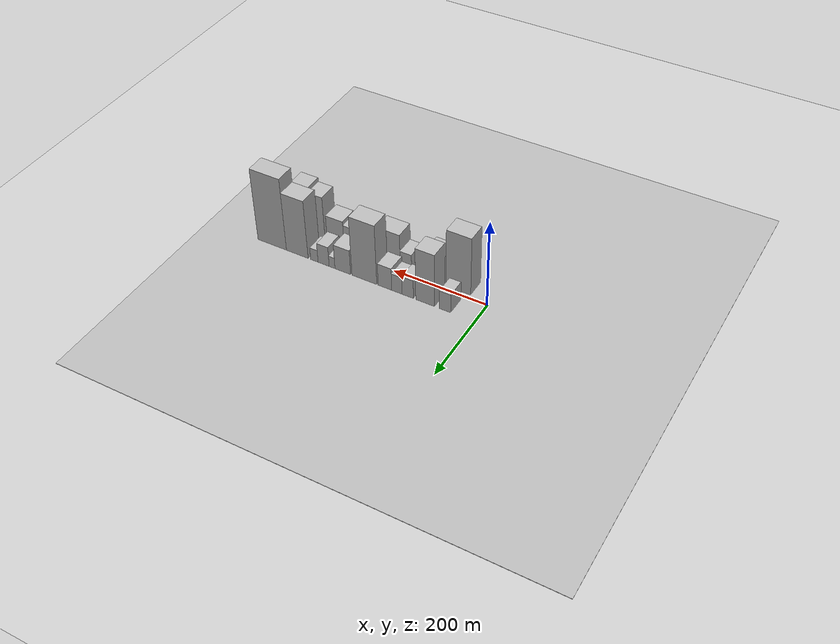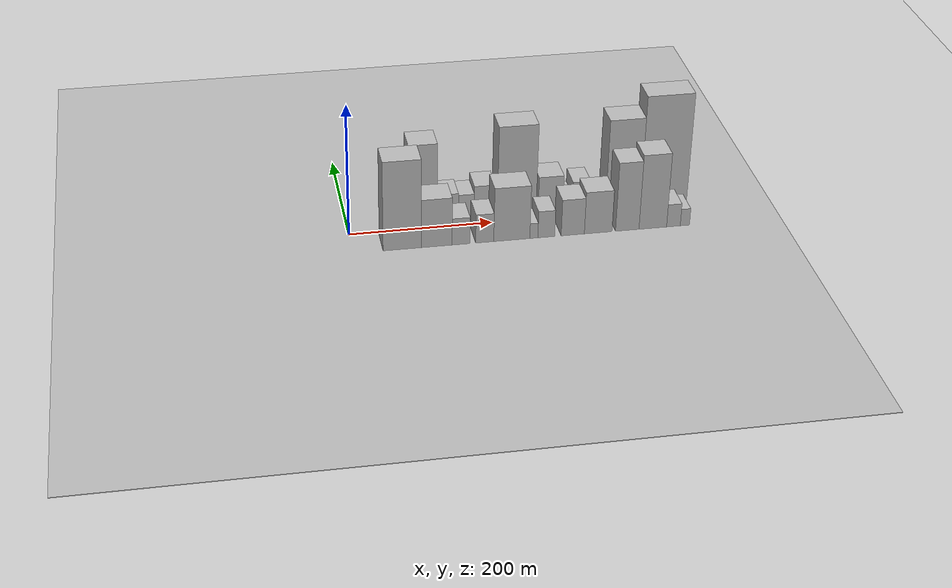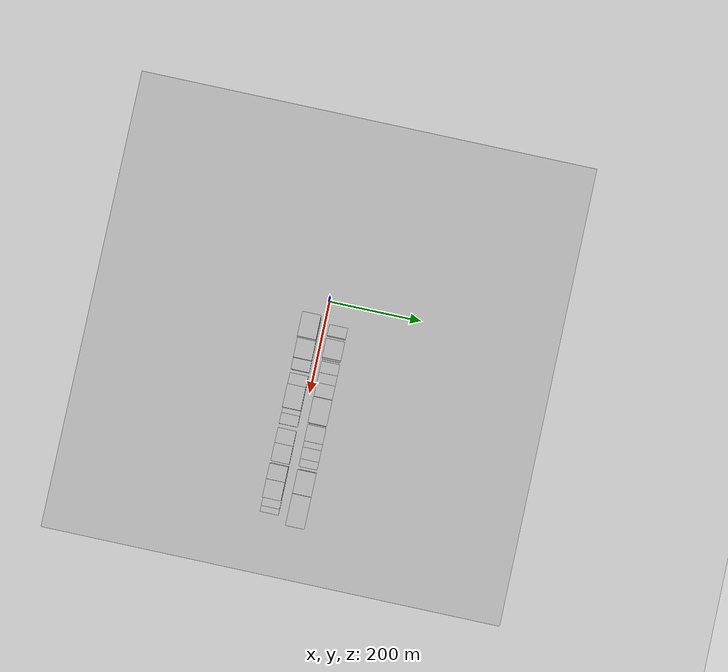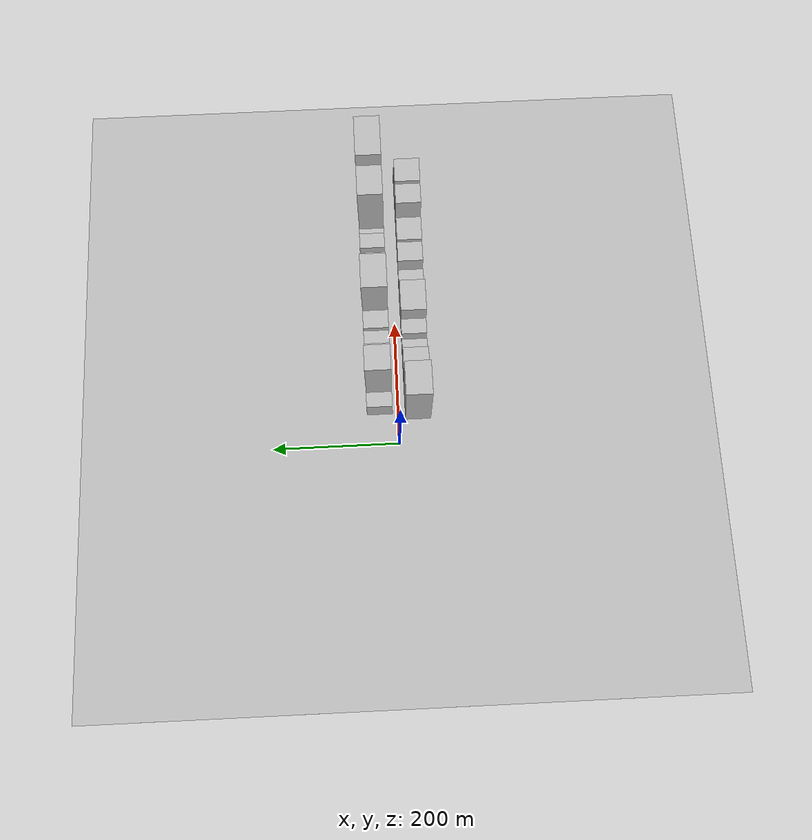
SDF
<?xml version="1.0" encoding="utf-8"?>

<sdf version="1.6">

   <world name="default">

      <gui fullscreen="0">

         <camera name="user_camera">

            <pose>-15 0 4.57585 0 0 0</pose>

            <view_controller>orbit</view_controller>

         </camera>

      </gui>

      <scene>

         <sky>

           <clouds>

             <speed>12</speed>

           </clouds>

         </sky>

         <ambient>0.4 0.4 0.4 1</ambient>

         <background>0.7 0.7 0.7 1</background>

         <shadows>1</shadows>

      </scene>

      <gravity>0 0 -9.8066</gravity>

      <magnetic_field>6e-06 2.3e-05 -4.2e-05</magnetic_field>

      <physics default="0" name="default_physics" type="ode">

         <ode>

            <solver>

               <type>quick</type>

               <iters>10</iters>

               <sor>1.0</sor>

               <use_dynamic_moi_rescaling>0</use_dynamic_moi_rescaling>

            </solver>

            <constraints>

               <cfm>0</cfm>

               <erp>0.2</erp>

               <contact_max_correcting_vel>100</contact_max_correcting_vel>

               <contact_surface_layer>0.001</contact_surface_layer>

            </constraints>

         </ode>

         <max_step_size>0.004</max_step_size>

         <real_time_factor>1</real_time_factor>

         <real_time_update_rate>250</real_time_update_rate>

      </physics>

      <light name="sun" type="directional">

         <cast_shadows>1</cast_shadows>

         <pose>0 0 10 0 0 0</pose>

         <diffuse>0.8 0.8 0.8 1</diffuse>

         <specular>0.2 0.2 0.2 1</specular>

         <attenuation>

            <range>1000</range>

            <constant>0.9</constant>

            <linear>0.01</linear>

            <quadratic>0.001</quadratic>

         </attenuation>

         <direction>-0.5 0.1 -0.9</direction>

      </light>

      <include>

         <name>ground_plane_1</name>

         <uri>model://HANNAS_ground_plane</uri>

         <pose>0 0 0  0 0 0</pose>

      </include>

      <include>

         <name>ground_plane_2</name>

         <uri>model://HANNAS_ground_plane</uri>

         <pose>100 0 0  0 0 0</pose>

      </include>

      <model name="building_1">

         <static>1</static>

         <pose frame="">61.9903 30.0000 0 0.000000 0.000000 1.570796</pose>

         <link name="link">

            <pose frame="">0 0 22.50 0 0 0</pose>

            <collision name="collision">

               <geometry>

                  <box>

                     <size>40.0000 23.9806 45.0000</size>

                  </box>

               </geometry>

               <max_contacts>10</max_contacts>

               <surface>

                  <contact>

                     <ode/>

                  </contact>

                  <bounce/>

                  <friction>

                     <torsional>

                        <ode/>

                     </torsional>

                     <ode/>

                  </friction>

               </surface>

            </collision>

            <visual name="visual">

               <cast_shadows>0</cast_shadows>

               <geometry>

                  <box>

                     <size>40.0000 23.9806 45.0000</size>

                  </box>

               </geometry>

               <material>

                  <script>

                     <uri>model://HANNAS_wall/materials/scripts</uri>

                     <uri>model://HANNAS_wall/materials/textures</uri>

                     <name>vrc/HANNAS_wall</name>

                  </script>

               </material>

            </visual>

            <self_collide>0</self_collide>

            <enable_wind>0</enable_wind>

            <kinematic>0</kinematic>

         </link>

      </model>

      <model name="building_2">

         <static>1</static>

         <pose frame="">104.1201 30.0000 0 0.000000 0.000000 1.570796</pose>

         <link name="link">

            <pose frame="">0 0 63.00 0 0 0</pose>

            <collision name="collision">

               <geometry>

                  <box>

                     <size>40.0000 40.2789 126.0000</size>

                  </box>

               </geometry>

               <max_contacts>10</max_contacts>

               <surface>

                  <contact>

                     <ode/>

                  </contact>

                  <bounce/>

                  <friction>

                     <torsional>

                        <ode/>

                     </torsional>

                     <ode/>

                  </friction>

               </surface>

            </collision>

            <visual name="visual">

               <cast_shadows>0</cast_shadows>

               <geometry>

                  <box>

                     <size>40.0000 40.2789 126.0000</size>

                  </box>

               </geometry>

               <material>

                  <script>

                     <uri>model://HANNAS_wall/materials/scripts</uri>

                     <uri>model://HANNAS_wall/materials/textures</uri>

                     <name>vrc/HANNAS_wall</name>

                  </script>

               </material>

            </visual>

            <self_collide>0</self_collide>

            <enable_wind>0</enable_wind>

            <kinematic>0</kinematic>

         </link>

      </model>

      <model name="building_3">

         <static>1</static>

         <pose frame="">141.6000 30.0000 0 0.000000 0.000000 1.570796</pose>

         <link name="link">

            <pose frame="">0 0 22.50 0 0 0</pose>

            <collision name="collision">

               <geometry>

                  <box>

                     <size>40.0000 24.6809 45.0000</size>

                  </box>

               </geometry>

               <max_contacts>10</max_contacts>

               <surface>

                  <contact>

                     <ode/>

                  </contact>

                  <bounce/>

                  <friction>

                     <torsional>

                        <ode/>

                     </torsional>

                     <ode/>

                  </friction>

               </surface>

            </collision>

            <visual name="visual">

               <cast_shadows>0</cast_shadows>

               <geometry>

                  <box>

                     <size>40.0000 24.6809 45.0000</size>

                  </box>

               </geometry>

               <material>

                  <script>

                     <uri>model://HANNAS_wall/materials/scripts</uri>

                     <uri>model://HANNAS_wall/materials/textures</uri>

                     <name>vrc/HANNAS_wall</name>

                  </script>

               </material>

            </visual>

            <self_collide>0</self_collide>

            <enable_wind>0</enable_wind>

            <kinematic>0</kinematic>

         </link>

      </model>

      <model name="building_4">

         <static>1</static>

         <pose frame="">165.0783 30.0000 0 0.000000 0.000000 1.570796</pose>

         <link name="link">

            <pose frame="">0 0 21.00 0 0 0</pose>

            <collision name="collision">

               <geometry>

                  <box>

                     <size>40.0000 22.2758 42.0000</size>

                  </box>

               </geometry>

               <max_contacts>10</max_contacts>

               <surface>

                  <contact>

                     <ode/>

                  </contact>

                  <bounce/>

                  <friction>

                     <torsional>

                        <ode/>

                     </torsional>

                     <ode/>

                  </friction>

               </surface>

            </collision>

            <visual name="visual">

               <cast_shadows>0</cast_shadows>

               <geometry>

                  <box>

                     <size>40.0000 22.2758 42.0000</size>

                  </box>

               </geometry>

               <material>

                  <script>

                     <uri>model://HANNAS_wall/materials/scripts</uri>

                     <uri>model://HANNAS_wall/materials/textures</uri>

                     <name>vrc/HANNAS_wall</name>

                  </script>

               </material>

            </visual>

            <self_collide>0</self_collide>

            <enable_wind>0</enable_wind>

            <kinematic>0</kinematic>

         </link>

      </model>

      <model name="building_5">

         <static>1</static>

         <pose frame="">191.0973 30.0000 0 0.000000 0.000000 1.570796</pose>

         <link name="link">

            <pose frame="">0 0 27.00 0 0 0</pose>

            <collision name="collision">

               <geometry>

                  <box>

                     <size>40.0000 29.7621 54.0000</size>

                  </box>

               </geometry>

               <max_contacts>10</max_contacts>

               <surface>

                  <contact>

                     <ode/>

                  </contact>

                  <bounce/>

                  <friction>

                     <torsional>

                        <ode/>

                     </torsional>

                     <ode/>

                  </friction>

               </surface>

            </collision>

            <visual name="visual">

               <cast_shadows>0</cast_shadows>

               <geometry>

                  <box>

                     <size>40.0000 29.7621 54.0000</size>

                  </box>

               </geometry>

               <material>

                  <script>

                     <uri>model://HANNAS_wall/materials/scripts</uri>

                     <uri>model://HANNAS_wall/materials/textures</uri>

                     <name>vrc/HANNAS_wall</name>

                  </script>

               </material>

            </visual>

            <self_collide>0</self_collide>

            <enable_wind>0</enable_wind>

            <kinematic>0</kinematic>

         </link>

      </model>

      <model name="building_6">

         <static>1</static>

         <pose frame="">236.5478 30.0000 0 0.000000 0.000000 1.570796</pose>

         <link name="link">

            <pose frame="">0 0 72.00 0 0 0</pose>

            <collision name="collision">

               <geometry>

                  <box>

                     <size>40.0000 55.1391 144.0000</size>

                  </box>

               </geometry>

               <max_contacts>10</max_contacts>

               <surface>

                  <contact>

                     <ode/>

                  </contact>

                  <bounce/>

                  <friction>

                     <torsional>

                        <ode/>

                     </torsional>

                     <ode/>

                  </friction>

               </surface>

            </collision>

            <visual name="visual">

               <cast_shadows>0</cast_shadows>

               <geometry>

                  <box>

                     <size>40.0000 55.1391 144.0000</size>

                  </box>

               </geometry>

               <material>

                  <script>

                     <uri>model://HANNAS_wall/materials/scripts</uri>

                     <uri>model://HANNAS_wall/materials/textures</uri>

                     <name>vrc/HANNAS_wall</name>

                  </script>

               </material>

            </visual>

            <self_collide>0</self_collide>

            <enable_wind>0</enable_wind>

            <kinematic>0</kinematic>

         </link>

      </model>

      <model name="building_7">

         <static>1</static>

         <pose frame="">284.7847 30.0000 0 0.000000 0.000000 1.570796</pose>

         <link name="link">

            <pose frame="">0 0 30.00 0 0 0</pose>

            <collision name="collision">

               <geometry>

                  <box>

                     <size>40.0000 35.3346 60.0000</size>

                  </box>

               </geometry>

               <max_contacts>10</max_contacts>

               <surface>

                  <contact>

                     <ode/>

                  </contact>

                  <bounce/>

                  <friction>

                     <torsional>

                        <ode/>

                     </torsional>

                     <ode/>

                  </friction>

               </surface>

            </collision>

            <visual name="visual">

               <cast_shadows>0</cast_shadows>

               <geometry>

                  <box>

                     <size>40.0000 35.3346 60.0000</size>

                  </box>

               </geometry>

               <material>

                  <script>

                     <uri>model://HANNAS_wall/materials/scripts</uri>

                     <uri>model://HANNAS_wall/materials/textures</uri>

                     <name>vrc/HANNAS_wall</name>

                  </script>

               </material>

            </visual>

            <self_collide>0</self_collide>

            <enable_wind>0</enable_wind>

            <kinematic>0</kinematic>

         </link>

      </model>

      <model name="building_8">

         <static>1</static>

         <pose frame="">309.0534 30.0000 0 0.000000 0.000000 1.570796</pose>

         <link name="link">

            <pose frame="">0 0 13.50 0 0 0</pose>

            <collision name="collision">

               <geometry>

                  <box>

                     <size>40.0000 13.2028 27.0000</size>

                  </box>

               </geometry>

               <max_contacts>10</max_contacts>

               <surface>

                  <contact>

                     <ode/>

                  </contact>

                  <bounce/>

                  <friction>

                     <torsional>

                        <ode/>

                     </torsional>

                     <ode/>

                  </friction>

               </surface>

            </collision>

            <visual name="visual">

               <cast_shadows>0</cast_shadows>

               <geometry>

                  <box>

                     <size>40.0000 13.2028 27.0000</size>

                  </box>

               </geometry>

               <material>

                  <script>

                     <uri>model://HANNAS_wall/materials/scripts</uri>

                     <uri>model://HANNAS_wall/materials/textures</uri>

                     <name>vrc/HANNAS_wall</name>

                  </script>

               </material>

            </visual>

            <self_collide>0</self_collide>

            <enable_wind>0</enable_wind>

            <kinematic>0</kinematic>

         </link>

      </model>

      <model name="building_9">

         <static>1</static>

         <pose frame="">328.2975 30.0000 0 0.000000 0.000000 1.570796</pose>

         <link name="link">

            <pose frame="">0 0 24.00 0 0 0</pose>

            <collision name="collision">

               <geometry>

                  <box>

                     <size>40.0000 25.2855 48.0000</size>

                  </box>

               </geometry>

               <max_contacts>10</max_contacts>

               <surface>

                  <contact>

                     <ode/>

                  </contact>

                  <bounce/>

                  <friction>

                     <torsional>

                        <ode/>

                     </torsional>

                     <ode/>

                  </friction>

               </surface>

            </collision>

            <visual name="visual">

               <cast_shadows>0</cast_shadows>

               <geometry>

                  <box>

                     <size>40.0000 25.2855 48.0000</size>

                  </box>

               </geometry>

               <material>

                  <script>

                     <uri>model://HANNAS_wall/materials/scripts</uri>

                     <uri>model://HANNAS_wall/materials/textures</uri>

                     <name>vrc/HANNAS_wall</name>

                  </script>

               </material>

            </visual>

            <self_collide>0</self_collide>

            <enable_wind>0</enable_wind>

            <kinematic>0</kinematic>

         </link>

      </model>

      <model name="building_10">

         <static>1</static>

         <pose frame="">349.3878 30.0000 0 0.000000 0.000000 1.570796</pose>

         <link name="link">

            <pose frame="">0 0 15.00 0 0 0</pose>

            <collision name="collision">

               <geometry>

                  <box>

                     <size>40.0000 16.8951 30.0000</size>

                  </box>

               </geometry>

               <max_contacts>10</max_contacts>

               <surface>

                  <contact>

                     <ode/>

                  </contact>

                  <bounce/>

                  <friction>

                     <torsional>

                        <ode/>

                     </torsional>

                     <ode/>

                  </friction>

               </surface>

            </collision>

            <visual name="visual">

               <cast_shadows>0</cast_shadows>

               <geometry>

                  <box>

                     <size>40.0000 16.8951 30.0000</size>

                  </box>

               </geometry>

               <material>

                  <script>

                     <uri>model://HANNAS_wall/materials/scripts</uri>

                     <uri>model://HANNAS_wall/materials/textures</uri>

                     <name>vrc/HANNAS_wall</name>

                  </script>

               </material>

            </visual>

            <self_collide>0</self_collide>

            <enable_wind>0</enable_wind>

            <kinematic>0</kinematic>

         </link>

      </model>

      <model name="building_11">

         <static>1</static>

         <pose frame="">389.0252 30.0000 0 0.000000 0.000000 1.570796</pose>

         <link name="link">

            <pose frame="">0 0 70.50 0 0 0</pose>

            <collision name="collision">

               <geometry>

                  <box>

                     <size>40.0000 50.3797 141.0000</size>

                  </box>

               </geometry>

               <max_contacts>10</max_contacts>

               <surface>

                  <contact>

                     <ode/>

                  </contact>

                  <bounce/>

                  <friction>

                     <torsional>

                        <ode/>

                     </torsional>

                     <ode/>

                  </friction>

               </surface>

            </collision>

            <visual name="visual">

               <cast_shadows>0</cast_shadows>

               <geometry>

                  <box>

                     <size>40.0000 50.3797 141.0000</size>

                  </box>

               </geometry>

               <material>

                  <script>

                     <uri>model://HANNAS_wall/materials/scripts</uri>

                     <uri>model://HANNAS_wall/materials/textures</uri>

                     <name>vrc/HANNAS_wall</name>

                  </script>

               </material>

            </visual>

            <self_collide>0</self_collide>

            <enable_wind>0</enable_wind>

            <kinematic>0</kinematic>

         </link>

      </model>

      <model name="building_12">

         <static>1</static>

         <pose frame="">447.8136 30.0000 0 0.000000 0.000000 1.570796</pose>

         <link name="link">

            <pose frame="">0 0 87.00 0 0 0</pose>

            <collision name="collision">

               <geometry>

                  <box>

                     <size>40.0000 67.1970 174.0000</size>

                  </box>

               </geometry>

               <max_contacts>10</max_contacts>

               <surface>

                  <contact>

                     <ode/>

                  </contact>

                  <bounce/>

                  <friction>

                     <torsional>

                        <ode/>

                     </torsional>

                     <ode/>

                  </friction>

               </surface>

            </collision>

            <visual name="visual">

               <cast_shadows>0</cast_shadows>

               <geometry>

                  <box>

                     <size>40.0000 67.1970 174.0000</size>

                  </box>

               </geometry>

               <material>

                  <script>

                     <uri>model://HANNAS_wall/materials/scripts</uri>

                     <uri>model://HANNAS_wall/materials/textures</uri>

                     <name>vrc/HANNAS_wall</name>

                  </script>

               </material>

            </visual>

            <self_collide>0</self_collide>

            <enable_wind>0</enable_wind>

            <kinematic>0</kinematic>

         </link>

      </model>

      <model name="building_13">

         <static>1</static>

         <pose frame="">66.2596 -30.0000 0 0.000000 0.000000 1.570796</pose>

         <link name="link">

            <pose frame="">0 0 69.00 0 0 0</pose>

            <collision name="collision">

               <geometry>

                  <box>

                     <size>40.0000 52.5192 138.0000</size>

                  </box>

               </geometry>

               <max_contacts>10</max_contacts>

               <surface>

                  <contact>

                     <ode/>

                  </contact>

                  <bounce/>

                  <friction>

                     <torsional>

                        <ode/>

                     </torsional>

                     <ode/>

                  </friction>

               </surface>

            </collision>

            <visual name="visual">

               <cast_shadows>0</cast_shadows>

               <geometry>

                  <box>

                     <size>40.0000 52.5192 138.0000</size>

                  </box>

               </geometry>

               <material>

                  <script>

                     <uri>model://HANNAS_wall/materials/scripts</uri>

                     <uri>model://HANNAS_wall/materials/textures</uri>

                     <name>vrc/HANNAS_wall</name>

                  </script>

               </material>

            </visual>

            <self_collide>0</self_collide>

            <enable_wind>0</enable_wind>

            <kinematic>0</kinematic>

         </link>

      </model>

      <model name="building_14">

         <static>1</static>

         <pose frame="">113.6524 -30.0000 0 0.000000 0.000000 1.570796</pose>

         <link name="link">

            <pose frame="">0 0 37.50 0 0 0</pose>

            <collision name="collision">

               <geometry>

                  <box>

                     <size>40.0000 42.2664 75.0000</size>

                  </box>

               </geometry>

               <max_contacts>10</max_contacts>

               <surface>

                  <contact>

                     <ode/>

                  </contact>

                  <bounce/>

                  <friction>

                     <torsional>

                        <ode/>

                     </torsional>

                     <ode/>

                  </friction>

               </surface>

            </collision>

            <visual name="visual">

               <cast_shadows>0</cast_shadows>

               <geometry>

                  <box>

                     <size>40.0000 42.2664 75.0000</size>

                  </box>

               </geometry>

               <material>

                  <script>

                     <uri>model://HANNAS_wall/materials/scripts</uri>

                     <uri>model://HANNAS_wall/materials/textures</uri>

                     <name>vrc/HANNAS_wall</name>

                  </script>

               </material>

            </visual>

            <self_collide>0</self_collide>

            <enable_wind>0</enable_wind>

            <kinematic>0</kinematic>

         </link>

      </model>

      <model name="building_15">

         <static>1</static>

         <pose frame="">147.1516 -30.0000 0 0.000000 0.000000 1.570796</pose>

         <link name="link">

            <pose frame="">0 0 21.00 0 0 0</pose>

            <collision name="collision">

               <geometry>

                  <box>

                     <size>40.0000 24.7319 42.0000</size>

                  </box>

               </geometry>

               <max_contacts>10</max_contacts>

               <surface>

                  <contact>

                     <ode/>

                  </contact>

                  <bounce/>

                  <friction>

                     <torsional>

                        <ode/>

                     </torsional>

                     <ode/>

                  </friction>

               </surface>

            </collision>

            <visual name="visual">

               <cast_shadows>0</cast_shadows>

               <geometry>

                  <box>

                     <size>40.0000 24.7319 42.0000</size>

                  </box>

               </geometry>

               <material>

                  <script>

                     <uri>model://HANNAS_wall/materials/scripts</uri>

                     <uri>model://HANNAS_wall/materials/textures</uri>

                     <name>vrc/HANNAS_wall</name>

                  </script>

               </material>

            </visual>

            <self_collide>0</self_collide>

            <enable_wind>0</enable_wind>

            <kinematic>0</kinematic>

         </link>

      </model>

      <model name="building_16">

         <static>1</static>

         <pose frame="">180.0183 -30.0000 0 0.000000 0.000000 1.570796</pose>

         <link name="link">

            <pose frame="">0 0 22.50 0 0 0</pose>

            <collision name="collision">

               <geometry>

                  <box>

                     <size>40.0000 25.0017 45.0000</size>

                  </box>

               </geometry>

               <max_contacts>10</max_contacts>

               <surface>

                  <contact>

                     <ode/>

                  </contact>

                  <bounce/>

                  <friction>

                     <torsional>

                        <ode/>

                     </torsional>

                     <ode/>

                  </friction>

               </surface>

            </collision>

            <visual name="visual">

               <cast_shadows>0</cast_shadows>

               <geometry>

                  <box>

                     <size>40.0000 25.0017 45.0000</size>

                  </box>

               </geometry>

               <material>

                  <script>

                     <uri>model://HANNAS_wall/materials/scripts</uri>

                     <uri>model://HANNAS_wall/materials/textures</uri>

                     <name>vrc/HANNAS_wall</name>

                  </script>

               </material>

            </visual>

            <self_collide>0</self_collide>

            <enable_wind>0</enable_wind>

            <kinematic>0</kinematic>

         </link>

      </model>

      <model name="building_17">

         <static>1</static>

         <pose frame="">217.6344 -30.0000 0 0.000000 0.000000 1.570796</pose>

         <link name="link">

            <pose frame="">0 0 42.00 0 0 0</pose>

            <collision name="collision">

               <geometry>

                  <box>

                     <size>40.0000 50.2303 84.0000</size>

                  </box>

               </geometry>

               <max_contacts>10</max_contacts>

               <surface>

                  <contact>

                     <ode/>

                  </contact>

                  <bounce/>

                  <friction>

                     <torsional>

                        <ode/>

                     </torsional>

                     <ode/>

                  </friction>

               </surface>

            </collision>

            <visual name="visual">

               <cast_shadows>0</cast_shadows>

               <geometry>

                  <box>

                     <size>40.0000 50.2303 84.0000</size>

                  </box>

               </geometry>

               <material>

                  <script>

                     <uri>model://HANNAS_wall/materials/scripts</uri>

                     <uri>model://HANNAS_wall/materials/textures</uri>

                     <name>vrc/HANNAS_wall</name>

                  </script>

               </material>

            </visual>

            <self_collide>0</self_collide>

            <enable_wind>0</enable_wind>

            <kinematic>0</kinematic>

         </link>

      </model>

      <model name="building_18">

         <static>1</static>

         <pose frame="">248.3759 -30.0000 0 0.000000 0.000000 1.570796</pose>

         <link name="link">

            <pose frame="">0 0 12.00 0 0 0</pose>

            <collision name="collision">

               <geometry>

                  <box>

                     <size>40.0000 11.2528 24.0000</size>

                  </box>

               </geometry>

               <max_contacts>10</max_contacts>

               <surface>

                  <contact>

                     <ode/>

                  </contact>

                  <bounce/>

                  <friction>

                     <torsional>

                        <ode/>

                     </torsional>

                     <ode/>

                  </friction>

               </surface>

            </collision>

            <visual name="visual">

               <cast_shadows>0</cast_shadows>

               <geometry>

                  <box>

                     <size>40.0000 11.2528 24.0000</size>

                  </box>

               </geometry>

               <material>

                  <script>

                     <uri>model://HANNAS_wall/materials/scripts</uri>

                     <uri>model://HANNAS_wall/materials/textures</uri>

                     <name>vrc/HANNAS_wall</name>

                  </script>

               </material>

            </visual>

            <self_collide>0</self_collide>

            <enable_wind>0</enable_wind>

            <kinematic>0</kinematic>

         </link>

      </model>

      <model name="building_19">

         <static>1</static>

         <pose frame="">265.8201 -30.0000 0 0.000000 0.000000 1.570796</pose>

         <link name="link">

            <pose frame="">0 0 21.00 0 0 0</pose>

            <collision name="collision">

               <geometry>

                  <box>

                     <size>40.0000 23.6355 42.0000</size>

                  </box>

               </geometry>

               <max_contacts>10</max_contacts>

               <surface>

                  <contact>

                     <ode/>

                  </contact>

                  <bounce/>

                  <friction>

                     <torsional>

                        <ode/>

                     </torsional>

                     <ode/>

                  </friction>

               </surface>

            </collision>

            <visual name="visual">

               <cast_shadows>0</cast_shadows>

               <geometry>

                  <box>

                     <size>40.0000 23.6355 42.0000</size>

                  </box>

               </geometry>

               <material>

                  <script>

                     <uri>model://HANNAS_wall/materials/scripts</uri>

                     <uri>model://HANNAS_wall/materials/textures</uri>

                     <name>vrc/HANNAS_wall</name>

                  </script>

               </material>

            </visual>

            <self_collide>0</self_collide>

            <enable_wind>0</enable_wind>

            <kinematic>0</kinematic>

         </link>

      </model>

      <model name="building_20">

         <static>1</static>

         <pose frame="">302.9723 -30.0000 0 0.000000 0.000000 1.570796</pose>

         <link name="link">

            <pose frame="">0 0 28.50 0 0 0</pose>

            <collision name="collision">

               <geometry>

                  <box>

                     <size>40.0000 32.6688 57.0000</size>

                  </box>

               </geometry>

               <max_contacts>10</max_contacts>

               <surface>

                  <contact>

                     <ode/>

                  </contact>

                  <bounce/>

                  <friction>

                     <torsional>

                        <ode/>

                     </torsional>

                     <ode/>

                  </friction>

               </surface>

            </collision>

            <visual name="visual">

               <cast_shadows>0</cast_shadows>

               <geometry>

                  <box>

                     <size>40.0000 32.6688 57.0000</size>

                  </box>

               </geometry>

               <material>

                  <script>

                     <uri>model://HANNAS_wall/materials/scripts</uri>

                     <uri>model://HANNAS_wall/materials/textures</uri>

                     <name>vrc/HANNAS_wall</name>

                  </script>

               </material>

            </visual>

            <self_collide>0</self_collide>

            <enable_wind>0</enable_wind>

            <kinematic>0</kinematic>

         </link>

      </model>

      <model name="building_21">

         <static>1</static>

         <pose frame="">338.8002 -30.0000 0 0.000000 0.000000 1.570796</pose>

         <link name="link">

            <pose frame="">0 0 33.00 0 0 0</pose>

            <collision name="collision">

               <geometry>

                  <box>

                     <size>40.0000 38.9869 66.0000</size>

                  </box>

               </geometry>

               <max_contacts>10</max_contacts>

               <surface>

                  <contact>

                     <ode/>

                  </contact>

                  <bounce/>

                  <friction>

                     <torsional>

                        <ode/>

                     </torsional>

                     <ode/>

                  </friction>

               </surface>

            </collision>

            <visual name="visual">

               <cast_shadows>0</cast_shadows>

               <geometry>

                  <box>

                     <size>40.0000 38.9869 66.0000</size>

                  </box>

               </geometry>

               <material>

                  <script>

                     <uri>model://HANNAS_wall/materials/scripts</uri>

                     <uri>model://HANNAS_wall/materials/textures</uri>

                     <name>vrc/HANNAS_wall</name>

                  </script>

               </material>

            </visual>

            <self_collide>0</self_collide>

            <enable_wind>0</enable_wind>

            <kinematic>0</kinematic>

         </link>

      </model>

      <model name="building_22">

         <static>1</static>

         <pose frame="">379.9367 -30.0000 0 0.000000 0.000000 1.570796</pose>

         <link name="link">

            <pose frame="">0 0 54.00 0 0 0</pose>

            <collision name="collision">

               <geometry>

                  <box>

                     <size>40.0000 33.2862 108.0000</size>

                  </box>

               </geometry>

               <max_contacts>10</max_contacts>

               <surface>

                  <contact>

                     <ode/>

                  </contact>

                  <bounce/>

                  <friction>

                     <torsional>

                        <ode/>

                     </torsional>

                     <ode/>

                  </friction>

               </surface>

            </collision>

            <visual name="visual">

               <cast_shadows>0</cast_shadows>

               <geometry>

                  <box>

                     <size>40.0000 33.2862 108.0000</size>

                  </box>

               </geometry>

               <material>

                  <script>

                     <uri>model://HANNAS_wall/materials/scripts</uri>

                     <uri>model://HANNAS_wall/materials/textures</uri>

                     <name>vrc/HANNAS_wall</name>

                  </script>

               </material>

            </visual>

            <self_collide>0</self_collide>

            <enable_wind>0</enable_wind>

            <kinematic>0</kinematic>

         </link>

      </model>

      <model name="building_23">

         <static>1</static>

         <pose frame="">416.2277 -30.0000 0 0.000000 0.000000 1.570796</pose>

         <link name="link">

            <pose frame="">0 0 58.50 0 0 0</pose>

            <collision name="collision">

               <geometry>

                  <box>

                     <size>40.0000 39.2958 117.0000</size>

                  </box>

               </geometry>

               <max_contacts>10</max_contacts>

               <surface>

                  <contact>

                     <ode/>

                  </contact>

                  <bounce/>

                  <friction>

                     <torsional>

                        <ode/>

                     </torsional>

                     <ode/>

                  </friction>

               </surface>

            </collision>

            <visual name="visual">

               <cast_shadows>0</cast_shadows>

               <geometry>

                  <box>

                     <size>40.0000 39.2958 117.0000</size>

                  </box>

               </geometry>

               <material>

                  <script>

                     <uri>model://HANNAS_wall/materials/scripts</uri>

                     <uri>model://HANNAS_wall/materials/textures</uri>

                     <name>vrc/HANNAS_wall</name>

                  </script>

               </material>

            </visual>

            <self_collide>0</self_collide>

            <enable_wind>0</enable_wind>

            <kinematic>0</kinematic>

         </link>

      </model>

      <model name="building_24">

         <static>1</static>

         <pose frame="">445.6363 -30.0000 0 0.000000 0.000000 1.570796</pose>

         <link name="link">

            <pose frame="">0 0 18.00 0 0 0</pose>

            <collision name="collision">

               <geometry>

                  <box>

                     <size>40.0000 19.5213 36.0000</size>

                  </box>

               </geometry>

               <max_contacts>10</max_contacts>

               <surface>

                  <contact>

                     <ode/>

                  </contact>

                  <bounce/>

                  <friction>

                     <torsional>

                        <ode/>

                     </torsional>

                     <ode/>

                  </friction>

               </surface>

            </collision>

            <visual name="visual">

               <cast_shadows>0</cast_shadows>

               <geometry>

                  <box>

                     <size>40.0000 19.5213 36.0000</size>

                  </box>

               </geometry>

               <material>

                  <script>

                     <uri>model://HANNAS_wall/materials/scripts</uri>

                     <uri>model://HANNAS_wall/materials/textures</uri>

                     <name>vrc/HANNAS_wall</name>

                  </script>

               </material>

            </visual>

            <self_collide>0</self_collide>

            <enable_wind>0</enable_wind>

            <kinematic>0</kinematic>

         </link>

      </model>

      <model name="building_25">

         <static>1</static>

         <pose frame="">462.0135 -30.0000 0 0.000000 0.000000 1.570796</pose>

         <link name="link">

            <pose frame="">0 0 13.50 0 0 0</pose>

            <collision name="collision">

               <geometry>

                  <box>

                     <size>40.0000 13.2332 27.0000</size>

                  </box>

               </geometry>

               <max_contacts>10</max_contacts>

               <surface>

                  <contact>

                     <ode/>

                  </contact>

                  <bounce/>

                  <friction>

                     <torsional>

                        <ode/>

                     </torsional>

                     <ode/>

                  </friction>

               </surface>

            </collision>

            <visual name="visual">

               <cast_shadows>0</cast_shadows>

               <geometry>

                  <box>

                     <size>40.0000 13.2332 27.0000</size>

                  </box>

               </geometry>

               <material>

                  <script>

                     <uri>model://HANNAS_wall/materials/scripts</uri>

                     <uri>model://HANNAS_wall/materials/textures</uri>

                     <name>vrc/HANNAS_wall</name>

                  </script>

               </material>

            </visual>

            <self_collide>0</self_collide>

            <enable_wind>0</enable_wind>

            <kinematic>0</kinematic>

         </link>

      </model>

   </world>

</sdf>

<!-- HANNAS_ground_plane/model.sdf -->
<sdf version="1.4">
<model name="HANNAS_ground_plane">
  <static>true</static>
    <link name="link">
      <collision name="collision">
        <geometry>
          <plane>
            <normal>0 0 1</normal>
            <size>1000 1000</size>
          </plane>
        </geometry>
        <surface>
          <friction>
            <ode>
              <mu>100</mu>
              <mu2>50</mu2>
            </ode>
          </friction>
        </surface>
      </collision>
      <visual name="visual">
        <cast_shadows>false</cast_shadows>
        <geometry>
          <plane>
            <normal>0 0 1</normal>
            <size>1000 1000</size>
          </plane>
        </geometry>
        <material>
          <script>
            <uri>model://HANNAS_ground_plane/materials/scripts/HANNAS_ground_plane.material</uri>
	    <uri>model://HANNAS_ground_plane/materials/textures</uri>
            <name>HANNASGroundPlane/Image</name>
          </script>
        </material>
      </visual>
    </link>
  </model>
</sdf>
